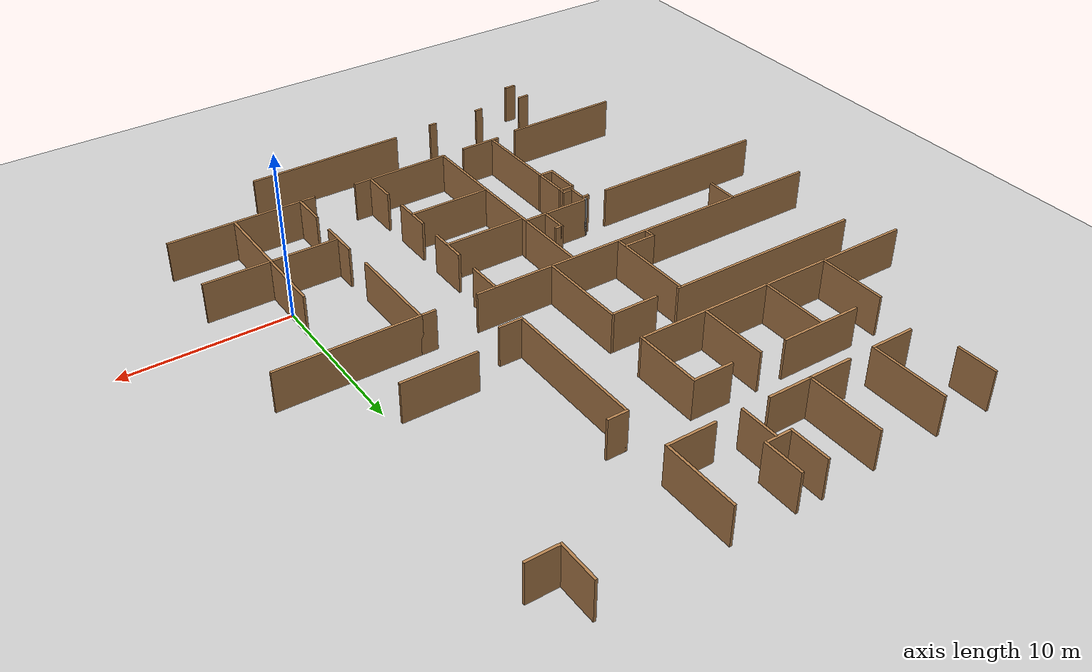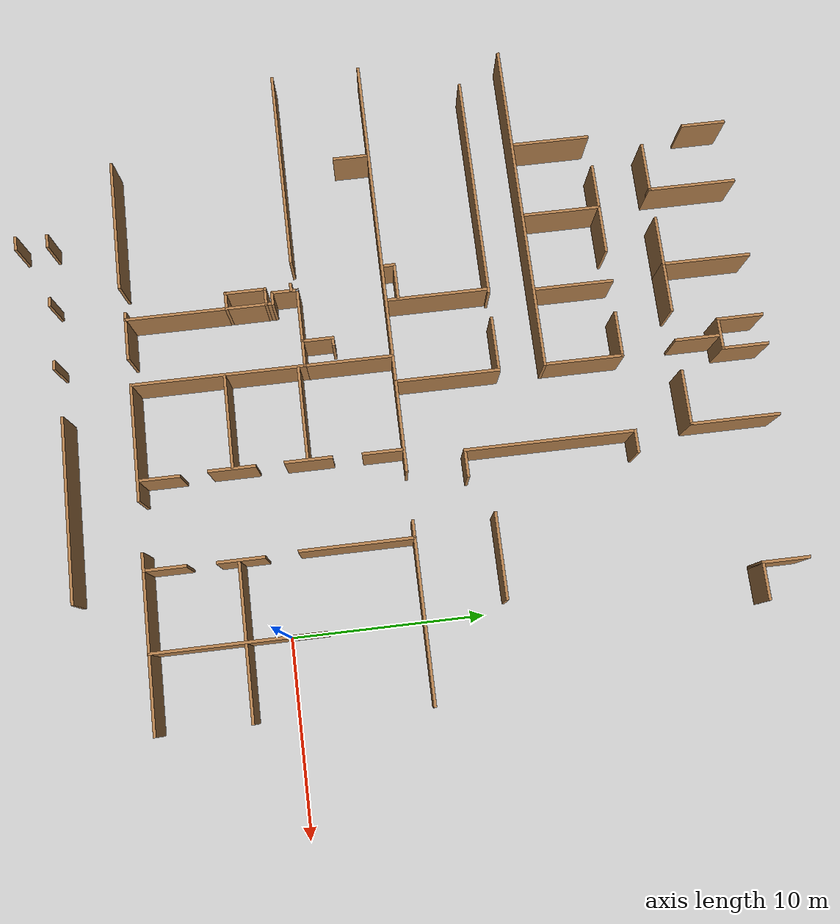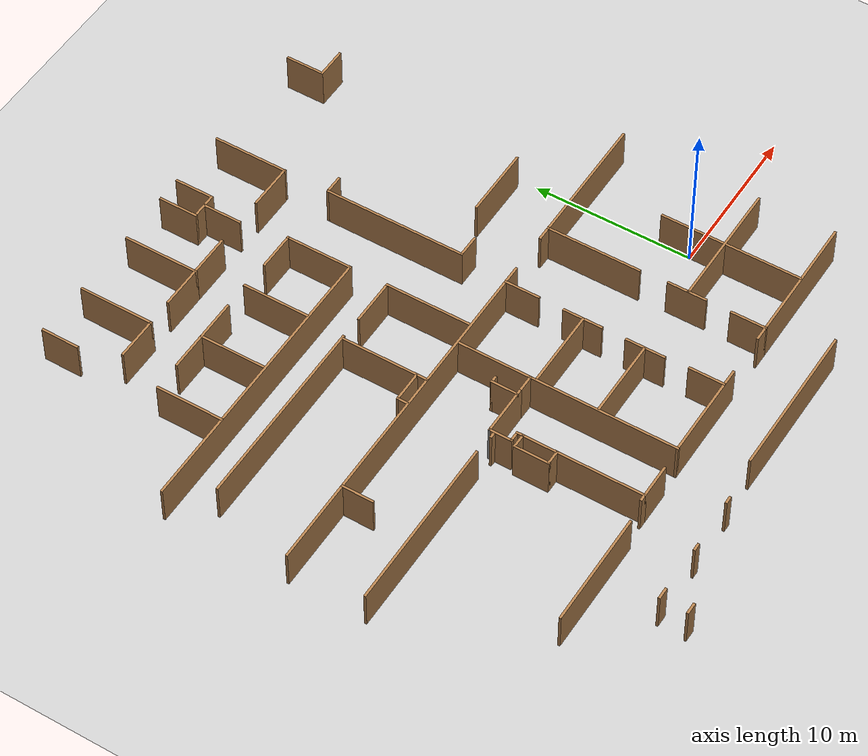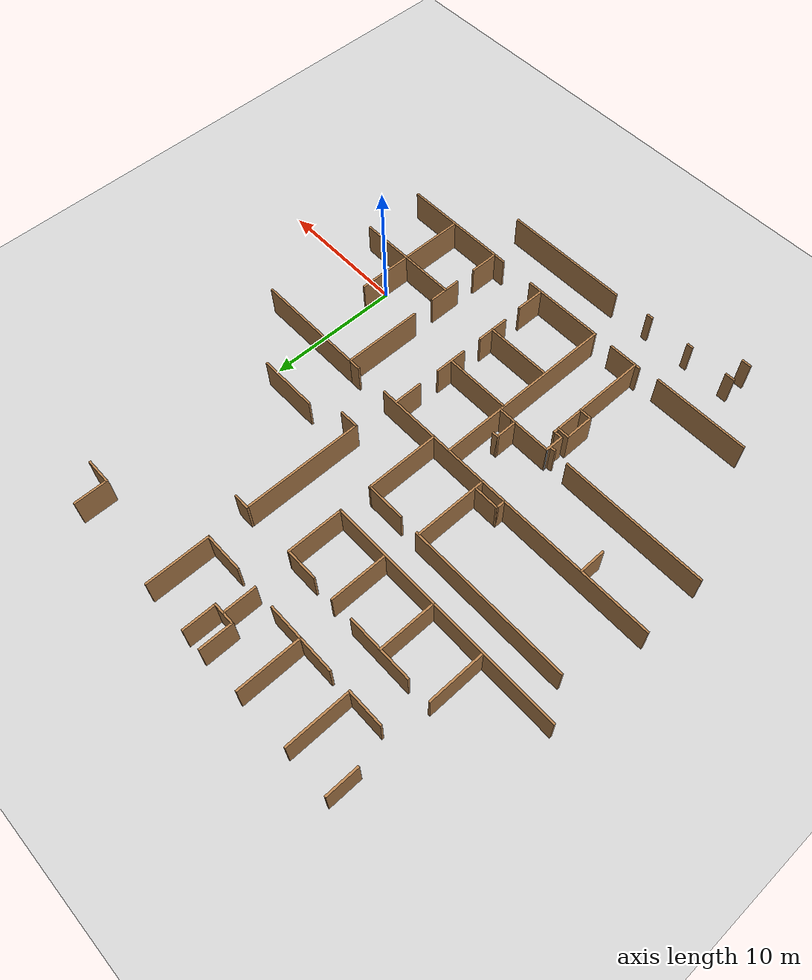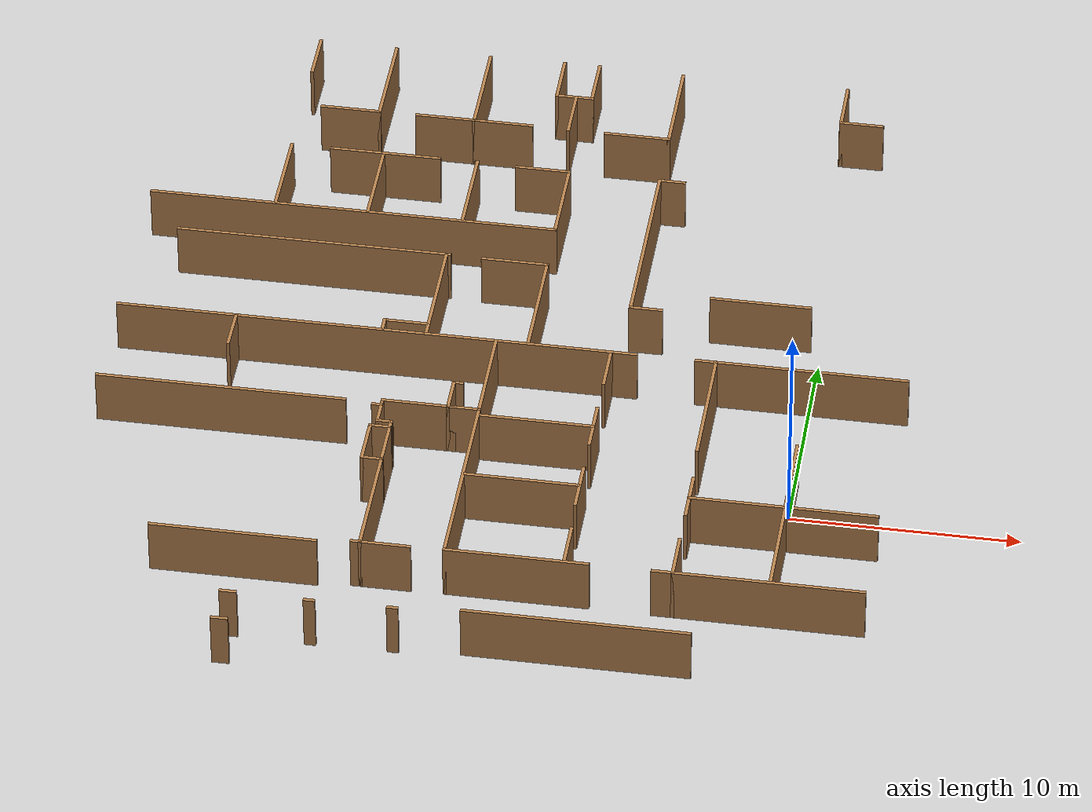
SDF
<sdf version="1.6">
 <world name="default">
  <model name="ground_plane">
   <static>1</static>
   <link name="link">
    <collision name="collision">
     <geometry><plane><normal>0 0 1</normal><size>100 100</size></plane></geometry>
     <surface><friction><ode><mu>100</mu><mu2>50</mu2></ode></friction></surface>
    </collision>
    <visual name="visual">
     <cast_shadows>0</cast_shadows>
     <geometry><plane><normal>0 0 1</normal><size>100 100</size></plane></geometry>
     <material>
      <script><uri>file://media/materials/scripts/gazebo.material</uri><name>Gazebo/Grey</name></script>
     </material>
    </visual>
   </link>
  </model>
  <model name="floor_plan">
   <link name="Wall_136">
    <collision name="Wall_136_Collision">
     <geometry><box><size>4.5 0.15 2.5</size></box></geometry>
     <pose>0 0 1.25 0 -0 0</pose>
    </collision>
    <visual name="Wall_136_Visual">
     <pose>0 0 1.25 0 -0 0</pose>
     <geometry><box><size>4.5 0.15 2.5</size></box></geometry>
     <material>
      <script><uri>file://media/materials/scripts/gazebo.material</uri><name>Gazebo/Wood</name></script>
      <ambient>1 1 1 1</ambient>
     </material>
    </visual>
    <pose>-2.72059 11.0775 0 0 -0 0</pose>
   </link>
   <link name="Wall_138">
    <collision name="Wall_138_Collision">
     <geometry><box><size>1.25 0.15 2.5</size></box></geometry>
     <pose>0 0 1.25 0 -0 0</pose>
    </collision>
    <visual name="Wall_138_Visual">
     <pose>0 0 1.25 0 -0 0</pose>
     <geometry><box><size>1.25 0.15 2.5</size></box></geometry>
     <material>
      <script><uri>file://media/materials/scripts/gazebo.material</uri><name>Gazebo/Wood</name></script>
      <ambient>1 1 1 1</ambient>
     </material>
    </visual>
    <pose>-7.75979 18.8072 0 0 -0 3.14159</pose>
   </link>
   <link name="Wall_139">
    <collision name="Wall_139_Collision">
     <geometry><box><size>9 0.15 2.5</size></box></geometry>
     <pose>0 0 1.25 0 -0 0</pose>
    </collision>
    <visual name="Wall_139_Visual">
     <pose>0 0 1.25 0 -0 0</pose>
     <geometry><box><size>9 0.15 2.5</size></box></geometry>
     <material>
      <script><uri>file://media/materials/scripts/gazebo.material</uri><name>Gazebo/Wood</name></script>
      <ambient>1 1 1 1</ambient>
     </material>
    </visual>
    <pose>-8.30979 14.3822 0 0 0 -1.5708</pose>
   </link>
   <link name="Wall_140">
    <collision name="Wall_140_Collision">
     <geometry><box><size>1.5 0.15 2.5</size></box></geometry>
     <pose>0 0 1.25 0 -0 0</pose>
    </collision>
    <visual name="Wall_140_Visual">
     <pose>0 0 1.25 0 -0 0</pose>
     <geometry><box><size>1.5 0.15 2.5</size></box></geometry>
     <material>
      <script><uri>file://media/materials/scripts/gazebo.material</uri><name>Gazebo/Wood</name></script>
      <ambient>1 1 1 1</ambient>
     </material>
    </visual>
    <pose>-7.63479 9.95716 0 0 -0 0</pose>
   </link>
   <link name="Wall_478">
    <collision name="Wall_478_Collision">
     <geometry><box><size>8.25 0.15 2.5</size></box></geometry>
     <pose>0 0 1.25 0 -0 0</pose>
    </collision>
    <visual name="Wall_478_Visual">
     <pose>0 0 1.25 0 -0 0</pose>
     <geometry><box><size>8.25 0.15 2.5</size></box></geometry>
     <material>
      <script><uri>file://media/materials/scripts/gazebo.material</uri><name>Gazebo/Wood</name></script>
      <ambient>1 1 1 1</ambient>
     </material>
    </visual>
    <pose>0.001989 -6.87235 0 0 -0 3.14159</pose>
   </link>
   <link name="Wall_479">
    <collision name="Wall_479_Collision">
     <geometry><box><size>2.25 0.15 2.5</size></box></geometry>
     <pose>0 0 1.25 0 -0 0</pose>
    </collision>
    <visual name="Wall_479_Visual">
     <pose>0 0 1.25 0 -0 0</pose>
     <geometry><box><size>2.25 0.15 2.5</size></box></geometry>
     <material>
      <script><uri>file://media/materials/scripts/gazebo.material</uri><name>Gazebo/Wood</name></script>
      <ambient>1 1 1 1</ambient>
     </material>
    </visual>
    <pose>-4.04801 -5.82235 0 0 -0 1.5708</pose>
   </link>
   <link name="Wall_487">
    <collision name="Wall_487_Collision">
     <geometry><box><size>2.5 0.15 2.5</size></box></geometry>
     <pose>0 0 1.25 0 -0 0</pose>
    </collision>
    <visual name="Wall_487_Visual">
     <pose>0 0 1.25 0 -0 0</pose>
     <geometry><box><size>2.5 0.15 2.5</size></box></geometry>
     <material>
      <script><uri>file://media/materials/scripts/gazebo.material</uri><name>Gazebo/Wood</name></script>
      <ambient>1 1 1 1</ambient>
     </material>
    </visual>
    <pose>-4.02581 -1.96902 0 0 -0 1.5708</pose>
   </link>
   <link name="Wall_489">
    <collision name="Wall_489_Collision">
     <geometry><box><size>6 0.15 2.5</size></box></geometry>
     <pose>0 0 1.25 0 -0 0</pose>
    </collision>
    <visual name="Wall_489_Visual">
     <pose>0 0 1.25 0 -0 0</pose>
     <geometry><box><size>6 0.15 2.5</size></box></geometry>
     <material>
      <script><uri>file://media/materials/scripts/gazebo.material</uri><name>Gazebo/Wood</name></script>
      <ambient>1 1 1 1</ambient>
     </material>
    </visual>
    <pose>-4.12159 3.93162 0 0 -0 1.5708</pose>
   </link>
   <link name="Wall_490">
    <collision name="Wall_490_Collision">
     <geometry><box><size>8.5 0.15 2.5</size></box></geometry>
     <pose>0 0 1.25 0 -0 0</pose>
    </collision>
    <visual name="Wall_490_Visual">
     <pose>0 0 1.25 0 -0 0</pose>
     <geometry><box><size>8.5 0.15 2.5</size></box></geometry>
     <material>
      <script><uri>file://media/materials/scripts/gazebo.material</uri><name>Gazebo/Wood</name></script>
      <ambient>1 1 1 1</ambient>
     </material>
    </visual>
    <pose>0.053406 6.85663 0 0 -0 0</pose>
   </link>
   <link name="Wall_498">
    <collision name="Wall_498_Collision">
     <geometry><box><size>8.15 0.15 2.5</size></box></geometry>
     <pose>0 0 1.25 0 -0 0</pose>
    </collision>
    <visual name="Wall_498_Visual">
     <pose>0 0 1.25 0 -0 0</pose>
     <geometry><box><size>8.15 0.15 2.5</size></box></geometry>
     <material>
      <script><uri>file://media/materials/scripts/gazebo.material</uri><name>Gazebo/Wood</name></script>
      <ambient>1 1 1 1</ambient>
     </material>
    </visual>
    <pose>0.006118 -2.05847 0 0 -0 0</pose>
   </link>
   <link name="Wall_500">
    <collision name="Wall_500_Collision">
     <geometry><box><size>8.9 0.15 2.5</size></box></geometry>
     <pose>0 0 1.25 0 -0 0</pose>
    </collision>
    <visual name="Wall_500_Visual">
     <pose>0 0 1.25 0 -0 0</pose>
     <geometry><box><size>8.9 0.15 2.5</size></box></geometry>
     <material>
      <script><uri>file://media/materials/scripts/gazebo.material</uri><name>Gazebo/Wood</name></script>
      <ambient>1 1 1 1</ambient>
     </material>
    </visual>
    <pose>0.079028 -2.46115 0 0 -0 1.5708</pose>
   </link>
   <link name="Wall_502">
    <collision name="Wall_502_Collision">
     <geometry><box><size>9.75 0.15 2.5</size></box></geometry>
     <pose>0 0 1.25 0 -0 0</pose>
    </collision>
    <visual name="Wall_502_Visual">
     <pose>0 0 1.25 0 -0 0</pose>
     <geometry><box><size>9.75 0.15 2.5</size></box></geometry>
     <material>
      <script><uri>file://media/materials/scripts/gazebo.material</uri><name>Gazebo/Wood</name></script>
      <ambient>1 1 1 1</ambient>
     </material>
    </visual>
    <pose>-7.61295 -10.5084 0 0 -0 0</pose>
   </link>
   <link name="Wall_52">
    <collision name="Wall_52_Collision">
     <geometry><box><size>2.4 0.15 2.5</size></box></geometry>
     <pose>0 0 1.25 0 -0 0</pose>
    </collision>
    <visual name="Wall_52_Visual">
     <pose>0 0 1.25 0 -0 0</pose>
     <geometry><box><size>2.4 0.15 2.5</size></box></geometry>
     <material>
      <script><uri>file://media/materials/scripts/gazebo.material</uri><name>Gazebo/Wood</name></script>
      <ambient>1 1 1 1</ambient>
     </material>
    </visual>
    <pose>-24.9619 25.3058 0 0 -0 1.5708</pose>
   </link>
   <link name="Wall_525">
    <collision name="Wall_525_Collision">
     <geometry><box><size>1 0.15 2.5</size></box></geometry>
     <pose>0 0 1.25 0 -0 0</pose>
    </collision>
    <visual name="Wall_525_Visual">
     <pose>0 0 1.25 0 -0 0</pose>
     <geometry><box><size>1 0.15 2.5</size></box></geometry>
     <material>
      <script><uri>file://media/materials/scripts/gazebo.material</uri><name>Gazebo/Wood</name></script>
      <ambient>1 1 1 1</ambient>
     </material>
    </visual>
    <pose>-4.54659 6.85663 0 0 -0 3.14159</pose>
   </link>
   <link name="Wall_527">
    <collision name="Wall_527_Collision">
     <geometry><box><size>23 0.15 2.5</size></box></geometry>
     <pose>0 0 1.25 0 -0 0</pose>
    </collision>
    <visual name="Wall_527_Visual">
     <pose>0 0 1.25 0 -0 0</pose>
     <geometry><box><size>23 0.15 2.5</size></box></geometry>
     <material>
      <script><uri>file://media/materials/scripts/gazebo.material</uri><name>Gazebo/Wood</name></script>
      <ambient>1 1 1 1</ambient>
     </material>
    </visual>
    <pose>-19.0405 6.85215 0 0 -0 3.14159</pose>
   </link>
   <link name="Wall_530">
    <collision name="Wall_530_Collision">
     <geometry><box><size>11 0.15 2.5</size></box></geometry>
     <pose>0 0 1.25 0 -0 0</pose>
    </collision>
    <visual name="Wall_530_Visual">
     <pose>0 0 1.25 0 -0 0</pose>
     <geometry><box><size>11 0.15 2.5</size></box></geometry>
     <material>
      <script><uri>file://media/materials/scripts/gazebo.material</uri><name>Gazebo/Wood</name></script>
      <ambient>1 1 1 1</ambient>
     </material>
    </visual>
    <pose>-25.0205 2.04584 0 0 -0 0</pose>
   </link>
   <link name="Wall_534">
    <collision name="Wall_534_Collision">
     <geometry><box><size>0.5 0.15 2.5</size></box></geometry>
     <pose>0 0 1.25 0 -0 0</pose>
    </collision>
    <visual name="Wall_534_Visual">
     <pose>0 0 1.25 0 -0 0</pose>
     <geometry><box><size>0.5 0.15 2.5</size></box></geometry>
     <material>
      <script><uri>file://media/materials/scripts/gazebo.material</uri><name>Gazebo/Wood</name></script>
      <ambient>1 1 1 1</ambient>
     </material>
    </visual>
    <pose>-14.935 3.83197 0 0 -0 3.14159</pose>
   </link>
   <link name="Wall_535">
    <collision name="Wall_535_Collision">
     <geometry><box><size>1.75 0.15 2.5</size></box></geometry>
     <pose>0 0 1.25 0 -0 0</pose>
    </collision>
    <visual name="Wall_535_Visual">
     <pose>0 0 1.25 0 -0 0</pose>
     <geometry><box><size>1.75 0.15 2.5</size></box></geometry>
     <material>
      <script><uri>file://media/materials/scripts/gazebo.material</uri><name>Gazebo/Wood</name></script>
      <ambient>1 1 1 1</ambient>
     </material>
    </visual>
    <pose>-15.11 3.03197 0 0 0 -1.5708</pose>
   </link>
   <link name="Wall_536">
    <collision name="Wall_536_Collision">
     <geometry><box><size>1.5 0.15 2.5</size></box></geometry>
     <pose>0 0 1.25 0 -0 0</pose>
    </collision>
    <visual name="Wall_536_Visual">
     <pose>0 0 1.25 0 -0 0</pose>
     <geometry><box><size>1.5 0.15 2.5</size></box></geometry>
     <material>
      <script><uri>file://media/materials/scripts/gazebo.material</uri><name>Gazebo/Wood</name></script>
      <ambient>1 1 1 1</ambient>
     </material>
    </visual>
    <pose>-14.4351 2.23197 0 0 -0 0</pose>
   </link>
   <link name="Wall_537">
    <collision name="Wall_537_Collision">
     <geometry><box><size>4.75 0.15 2.5</size></box></geometry>
     <pose>0 0 1.25 0 -0 0</pose>
    </collision>
    <visual name="Wall_537_Visual">
     <pose>0 0 1.25 0 -0 0</pose>
     <geometry><box><size>4.75 0.15 2.5</size></box></geometry>
     <material>
      <script><uri>file://media/materials/scripts/gazebo.material</uri><name>Gazebo/Wood</name></script>
      <ambient>1 1 1 1</ambient>
     </material>
    </visual>
    <pose>-13.76 4.53197 0 0 -0 1.5708</pose>
   </link>
   <link name="Wall_551">
    <collision name="Wall_551_Collision">
     <geometry><box><size>0.15 0.15 2.5</size></box></geometry>
     <pose>0 0 1.25 0 -0 0</pose>
    </collision>
    <visual name="Wall_551_Visual">
     <pose>0 0 1.25 0 -0 0</pose>
     <geometry><box><size>0.15 0.15 2.5</size></box></geometry>
     <material>
      <script><uri>file://media/materials/scripts/gazebo.material</uri><name>Gazebo/Grey</name></script>
      <ambient>1 1 1 1</ambient>
     </material>
    </visual>
    <pose>-17.9601 2.23197 0 0 -0 0</pose>
   </link>
   <link name="Wall_553">
    <collision name="Wall_553_Collision">
     <geometry><box><size>3.25 0.15 2.5</size></box></geometry>
     <pose>0 0 1.25 0 -0 0</pose>
    </collision>
    <visual name="Wall_553_Visual">
     <pose>0 0 1.25 0 -0 0</pose>
     <geometry><box><size>3.25 0.15 2.5</size></box></geometry>
     <material>
      <script><uri>file://media/materials/scripts/gazebo.material</uri><name>Gazebo/Wood</name></script>
      <ambient>1 1 1 1</ambient>
     </material>
    </visual>
    <pose>-16.41 2.23197 0 0 -0 0</pose>
   </link>
   <link name="Wall_555">
    <collision name="Wall_555_Collision">
     <geometry><box><size>1.5 0.15 2.5</size></box></geometry>
     <pose>0 0 1.25 0 -0 0</pose>
    </collision>
    <visual name="Wall_555_Visual">
     <pose>0 0 1.25 0 -0 0</pose>
     <geometry><box><size>1.5 0.15 2.5</size></box></geometry>
     <material>
      <script><uri>file://media/materials/scripts/gazebo.material</uri><name>Gazebo/Wood</name></script>
      <ambient>1 1 1 1</ambient>
     </material>
    </visual>
    <pose>-17.9601 1.55697 0 0 0 -1.5708</pose>
   </link>
   <link name="Wall_556">
    <collision name="Wall_556_Collision">
     <geometry><box><size>0.75 0.15 2.5</size></box></geometry>
     <pose>0 0 1.25 0 -0 0</pose>
    </collision>
    <visual name="Wall_556_Visual">
     <pose>0 0 1.25 0 -0 0</pose>
     <geometry><box><size>0.75 0.15 2.5</size></box></geometry>
     <material>
      <script><uri>file://media/materials/scripts/gazebo.material</uri><name>Gazebo/Wood</name></script>
      <ambient>1 1 1 1</ambient>
     </material>
    </visual>
    <pose>-17.66 0.881971 0 0 -0 0</pose>
   </link>
   <link name="Wall_557">
    <collision name="Wall_557_Collision">
     <geometry><box><size>0.5 0.15 2.5</size></box></geometry>
     <pose>0 0 1.25 0 -0 0</pose>
    </collision>
    <visual name="Wall_557_Visual">
     <pose>0 0 1.25 0 -0 0</pose>
     <geometry><box><size>0.5 0.15 2.5</size></box></geometry>
     <material>
      <script><uri>file://media/materials/scripts/gazebo.material</uri><name>Gazebo/Wood</name></script>
      <ambient>1 1 1 1</ambient>
     </material>
    </visual>
    <pose>-17.3601 0.706971 0 0 0 -1.5708</pose>
   </link>
   <link name="Wall_558">
    <collision name="Wall_558_Collision">
     <geometry><box><size>1 0.15 2.5</size></box></geometry>
     <pose>0 0 1.25 0 -0 0</pose>
    </collision>
    <visual name="Wall_558_Visual">
     <pose>0 0 1.25 0 -0 0</pose>
     <geometry><box><size>1 0.15 2.5</size></box></geometry>
     <material>
      <script><uri>file://media/materials/scripts/gazebo.material</uri><name>Gazebo/Wood</name></script>
      <ambient>1 1 1 1</ambient>
     </material>
    </visual>
    <pose>-17.785 0.531971 0 0 -0 3.14159</pose>
   </link>
   <link name="Wall_559">
    <collision name="Wall_559_Collision">
     <geometry><box><size>2.25 0.15 2.5</size></box></geometry>
     <pose>0 0 1.25 0 -0 0</pose>
    </collision>
    <visual name="Wall_559_Visual">
     <pose>0 0 1.25 0 -0 0</pose>
     <geometry><box><size>2.25 0.15 2.5</size></box></geometry>
     <material>
      <script><uri>file://media/materials/scripts/gazebo.material</uri><name>Gazebo/Wood</name></script>
      <ambient>1 1 1 1</ambient>
     </material>
    </visual>
    <pose>-18.2101 -0.518029 0 0 0 -1.5708</pose>
   </link>
   <link name="Wall_56">
    <collision name="Wall_56_Collision">
     <geometry><box><size>2.75 0.15 2.5</size></box></geometry>
     <pose>0 0 1.25 0 -0 0</pose>
    </collision>
    <visual name="Wall_56_Visual">
     <pose>0 0 1.25 0 -0 0</pose>
     <geometry><box><size>2.75 0.15 2.5</size></box></geometry>
     <material>
      <script><uri>file://media/materials/scripts/gazebo.material</uri><name>Gazebo/Wood</name></script>
      <ambient>1 1 1 1</ambient>
     </material>
    </visual>
    <pose>-22.7586 21.7614 0 0 -0 0</pose>
   </link>
   <link name="Wall_562">
    <collision name="Wall_562_Collision">
     <geometry><box><size>0.5 0.15 2.5</size></box></geometry>
     <pose>0 0 1.25 0 -0 0</pose>
    </collision>
    <visual name="Wall_562_Visual">
     <pose>0 0 1.25 0 -0 0</pose>
     <geometry><box><size>0.5 0.15 2.5</size></box></geometry>
     <material>
      <script><uri>file://media/materials/scripts/gazebo.material</uri><name>Gazebo/Wood</name></script>
      <ambient>1 1 1 1</ambient>
     </material>
    </visual>
    <pose>-18.1435 1.91203 0 0 -0 3.14159</pose>
   </link>
   <link name="Wall_564">
    <collision name="Wall_564_Collision">
     <geometry><box><size>9.25 0.15 2.5</size></box></geometry>
     <pose>0 0 1.25 0 -0 0</pose>
    </collision>
    <visual name="Wall_564_Visual">
     <pose>0 0 1.25 0 -0 0</pose>
     <geometry><box><size>9.25 0.15 2.5</size></box></geometry>
     <material>
      <script><uri>file://media/materials/scripts/gazebo.material</uri><name>Gazebo/Wood</name></script>
      <ambient>1 1 1 1</ambient>
     </material>
    </visual>
    <pose>-13.76 -2.31803 0 0 0 -1.5708</pose>
   </link>
   <link name="Wall_565">
    <collision name="Wall_565_Collision">
     <geometry><box><size>6.25 0.15 2.5</size></box></geometry>
     <pose>0 0 1.25 0 -0 0</pose>
    </collision>
    <visual name="Wall_565_Visual">
     <pose>0 0 1.25 0 -0 0</pose>
     <geometry><box><size>6.25 0.15 2.5</size></box></geometry>
     <material>
      <script><uri>file://media/materials/scripts/gazebo.material</uri><name>Gazebo/Wood</name></script>
      <ambient>1 1 1 1</ambient>
     </material>
    </visual>
    <pose>-10.7101 -6.86803 0 0 -0 0</pose>
   </link>
   <link name="Wall_567">
    <collision name="Wall_567_Collision">
     <geometry><box><size>1 0.15 2.5</size></box></geometry>
     <pose>0 0 1.25 0 -0 0</pose>
    </collision>
    <visual name="Wall_567_Visual">
     <pose>0 0 1.25 0 -0 0</pose>
     <geometry><box><size>1 0.15 2.5</size></box></geometry>
     <material>
      <script><uri>file://media/materials/scripts/gazebo.material</uri><name>Gazebo/Wood</name></script>
      <ambient>1 1 1 1</ambient>
     </material>
    </visual>
    <pose>-4.47301 -6.87235 0 0 -0 3.14159</pose>
   </link>
   <link name="Wall_57">
    <collision name="Wall_57_Collision">
     <geometry><box><size>4.75 0.15 2.5</size></box></geometry>
     <pose>0 0 1.25 0 -0 0</pose>
    </collision>
    <visual name="Wall_57_Visual">
     <pose>0 0 1.25 0 -0 0</pose>
     <geometry><box><size>4.75 0.15 2.5</size></box></geometry>
     <material>
      <script><uri>file://media/materials/scripts/gazebo.material</uri><name>Gazebo/Wood</name></script>
      <ambient>1 1 1 1</ambient>
     </material>
    </visual>
    <pose>-21.4586 24.0614 0 0 -0 1.5708</pose>
   </link>
   <link name="Wall_570">
    <collision name="Wall_570_Collision">
     <geometry><box><size>2.25 0.15 2.5</size></box></geometry>
     <pose>0 0 1.25 0 -0 0</pose>
    </collision>
    <visual name="Wall_570_Visual">
     <pose>0 0 1.25 0 -0 0</pose>
     <geometry><box><size>2.25 0.15 2.5</size></box></geometry>
     <material>
      <script><uri>file://media/materials/scripts/gazebo.material</uri><name>Gazebo/Wood</name></script>
      <ambient>1 1 1 1</ambient>
     </material>
    </visual>
    <pose>-8.718 5.79857 0 0 0 -1.5708</pose>
   </link>
   <link name="Wall_572">
    <collision name="Wall_572_Collision">
     <geometry><box><size>2.5 0.15 2.5</size></box></geometry>
     <pose>0 0 1.25 0 -0 0</pose>
    </collision>
    <visual name="Wall_572_Visual">
     <pose>0 0 1.25 0 -0 0</pose>
     <geometry><box><size>2.5 0.15 2.5</size></box></geometry>
     <material>
      <script><uri>file://media/materials/scripts/gazebo.material</uri><name>Gazebo/Wood</name></script>
      <ambient>1 1 1 1</ambient>
     </material>
    </visual>
    <pose>-8.74202 1.91202 0 0 0 -1.5708</pose>
   </link>
   <link name="Wall_574">
    <collision name="Wall_574_Collision">
     <geometry><box><size>2.5 0.15 2.5</size></box></geometry>
     <pose>0 0 1.25 0 -0 0</pose>
    </collision>
    <visual name="Wall_574_Visual">
     <pose>0 0 1.25 0 -0 0</pose>
     <geometry><box><size>2.5 0.15 2.5</size></box></geometry>
     <material>
      <script><uri>file://media/materials/scripts/gazebo.material</uri><name>Gazebo/Wood</name></script>
      <ambient>1 1 1 1</ambient>
     </material>
    </visual>
    <pose>-8.74318 -2.02448 0 0 0 -1.5708</pose>
   </link>
   <link name="Wall_579">
    <collision name="Wall_579_Collision">
     <geometry><box><size>2.25 0.15 2.5</size></box></geometry>
     <pose>0 0 1.25 0 -0 0</pose>
    </collision>
    <visual name="Wall_579_Visual">
     <pose>0 0 1.25 0 -0 0</pose>
     <geometry><box><size>2.25 0.15 2.5</size></box></geometry>
     <material>
      <script><uri>file://media/materials/scripts/gazebo.material</uri><name>Gazebo/Wood</name></script>
      <ambient>1 1 1 1</ambient>
     </material>
    </visual>
    <pose>-8.66602 -5.78721 0 0 -0 1.5708</pose>
   </link>
   <link name="Wall_581">
    <collision name="Wall_581_Collision">
     <geometry><box><size>5 0.15 2.5</size></box></geometry>
     <pose>0 0 1.25 0 -0 0</pose>
    </collision>
    <visual name="Wall_581_Visual">
     <pose>0 0 1.25 0 -0 0</pose>
     <geometry><box><size>5 0.15 2.5</size></box></geometry>
     <material>
      <script><uri>file://media/materials/scripts/gazebo.material</uri><name>Gazebo/Wood</name></script>
      <ambient>1 1 1 1</ambient>
     </material>
    </visual>
    <pose>-11.2426 -1.9871 0 0 -0 3.14159</pose>
   </link>
   <link name="Wall_583">
    <collision name="Wall_583_Collision">
     <geometry><box><size>5.05 0.15 2.5</size></box></geometry>
     <pose>0 0 1.25 0 -0 0</pose>
    </collision>
    <visual name="Wall_583_Visual">
     <pose>0 0 1.25 0 -0 0</pose>
     <geometry><box><size>5.05 0.15 2.5</size></box></geometry>
     <material>
      <script><uri>file://media/materials/scripts/gazebo.material</uri><name>Gazebo/Wood</name></script>
      <ambient>1 1 1 1</ambient>
     </material>
    </visual>
    <pose>-11.2171 1.87783 0 0 -0 3.14159</pose>
   </link>
   <link name="Wall_588">
    <collision name="Wall_588_Collision">
     <geometry><box><size>2 0.15 2.5</size></box></geometry>
     <pose>0 0 1.25 0 -0 0</pose>
    </collision>
    <visual name="Wall_588_Visual">
     <pose>0 0 1.25 0 -0 0</pose>
     <geometry><box><size>2 0.15 2.5</size></box></geometry>
     <material>
      <script><uri>file://media/materials/scripts/gazebo.material</uri><name>Gazebo/Wood</name></script>
      <ambient>1 1 1 1</ambient>
     </material>
    </visual>
    <pose>-25.2339 5.89344 0 0 0 -1.5708</pose>
   </link>
   <link name="Wall_59">
    <collision name="Wall_59_Collision">
     <geometry><box><size>2.75 0.15 2.5</size></box></geometry>
     <pose>0 0 1.25 0 -0 0</pose>
    </collision>
    <visual name="Wall_59_Visual">
     <pose>0 0 1.25 0 -0 0</pose>
     <geometry><box><size>2.75 0.15 2.5</size></box></geometry>
     <material>
      <script><uri>file://media/materials/scripts/gazebo.material</uri><name>Gazebo/Wood</name></script>
      <ambient>1 1 1 1</ambient>
     </material>
    </visual>
    <pose>-18.4507 21.7893 0 0 -0 0</pose>
   </link>
   <link name="Wall_593">
    <collision name="Wall_593_Collision">
     <geometry><box><size>7.25 0.15 2.5</size></box></geometry>
     <pose>0 0 1.25 0 -0 0</pose>
    </collision>
    <visual name="Wall_593_Visual">
     <pose>0 0 1.25 0 -0 0</pose>
     <geometry><box><size>7.25 0.15 2.5</size></box></geometry>
     <material>
      <script><uri>file://media/materials/scripts/gazebo.material</uri><name>Gazebo/Wood</name></script>
      <ambient>1 1 1 1</ambient>
     </material>
    </visual>
    <pose>-22.7839 -7.13156 0 0 -0 0</pose>
   </link>
   <link name="Wall_596">
    <collision name="Wall_596_Collision">
     <geometry><box><size>2.25 0.15 2.5</size></box></geometry>
     <pose>0 0 1.25 0 -0 0</pose>
    </collision>
    <visual name="Wall_596_Visual">
     <pose>0 0 1.25 0 -0 0</pose>
     <geometry><box><size>2.25 0.15 2.5</size></box></geometry>
     <material>
      <script><uri>file://media/materials/scripts/gazebo.material</uri><name>Gazebo/Wood</name></script>
      <ambient>1 1 1 1</ambient>
     </material>
    </visual>
    <pose>-17.3601 -0.518029 0 0 0 -1.5708</pose>
   </link>
   <link name="Wall_598">
    <collision name="Wall_598_Collision">
     <geometry><box><size>1 0.15 2.5</size></box></geometry>
     <pose>0 0 1.25 0 -0 0</pose>
    </collision>
    <visual name="Wall_598_Visual">
     <pose>0 0 1.25 0 -0 0</pose>
     <geometry><box><size>1 0.15 2.5</size></box></geometry>
     <material>
      <script><uri>file://media/materials/scripts/gazebo.material</uri><name>Gazebo/Wood</name></script>
      <ambient>1 1 1 1</ambient>
     </material>
    </visual>
    <pose>-17.785 -1.56803 0 0 -0 3.14159</pose>
   </link>
   <link name="Wall_60">
    <collision name="Wall_60_Collision">
     <geometry><box><size>4.75 0.15 2.5</size></box></geometry>
     <pose>0 0 1.25 0 -0 0</pose>
    </collision>
    <visual name="Wall_60_Visual">
     <pose>0 0 1.25 0 -0 0</pose>
     <geometry><box><size>4.75 0.15 2.5</size></box></geometry>
     <material>
      <script><uri>file://media/materials/scripts/gazebo.material</uri><name>Gazebo/Wood</name></script>
      <ambient>1 1 1 1</ambient>
     </material>
    </visual>
    <pose>-17.1507 24.0893 0 0 -0 1.5708</pose>
   </link>
   <link name="Wall_600">
    <collision name="Wall_600_Collision">
     <geometry><box><size>5.5 0.15 2.5</size></box></geometry>
     <pose>0 0 1.25 0 -0 0</pose>
    </collision>
    <visual name="Wall_600_Visual">
     <pose>0 0 1.25 0 -0 0</pose>
     <geometry><box><size>5.5 0.15 2.5</size></box></geometry>
     <material>
      <script><uri>file://media/materials/scripts/gazebo.material</uri><name>Gazebo/Wood</name></script>
      <ambient>1 1 1 1</ambient>
     </material>
    </visual>
    <pose>-17.3601 -4.24303 0 0 0 -1.5708</pose>
   </link>
   <link name="Wall_601">
    <collision name="Wall_601_Collision">
     <geometry><box><size>2.25 0.15 2.5</size></box></geometry>
     <pose>0 0 1.25 0 -0 0</pose>
    </collision>
    <visual name="Wall_601_Visual">
     <pose>0 0 1.25 0 -0 0</pose>
     <geometry><box><size>2.25 0.15 2.5</size></box></geometry>
     <material>
      <script><uri>file://media/materials/scripts/gazebo.material</uri><name>Gazebo/Wood</name></script>
      <ambient>1 1 1 1</ambient>
     </material>
    </visual>
    <pose>-16.31 -6.91803 0 0 -0 0</pose>
   </link>
   <link name="Wall_603">
    <collision name="Wall_603_Collision">
     <geometry><box><size>0.5 0.15 2.5</size></box></geometry>
     <pose>0 0 1.25 0 -0 0</pose>
    </collision>
    <visual name="Wall_603_Visual">
     <pose>0 0 1.25 0 -0 0</pose>
     <geometry><box><size>0.5 0.15 2.5</size></box></geometry>
     <material>
      <script><uri>file://media/materials/scripts/gazebo.material</uri><name>Gazebo/Wood</name></script>
      <ambient>1 1 1 1</ambient>
     </material>
    </visual>
    <pose>-17.535 -6.91803 0 0 -0 3.14159</pose>
   </link>
   <link name="Wall_610">
    <collision name="Wall_610_Collision">
     <geometry><box><size>12.25 0.15 2.5</size></box></geometry>
     <pose>0 0 1.25 0 -0 0</pose>
    </collision>
    <visual name="Wall_610_Visual">
     <pose>0 0 1.25 0 -0 0</pose>
     <geometry><box><size>12.25 0.15 2.5</size></box></geometry>
     <material>
      <script><uri>file://media/materials/scripts/gazebo.material</uri><name>Gazebo/Wood</name></script>
      <ambient>1 1 1 1</ambient>
     </material>
    </visual>
    <pose>-22.7656 12.3211 0 0 -0 0</pose>
   </link>
   <link name="Wall_612">
    <collision name="Wall_612_Collision">
     <geometry><box><size>5.5 0.15 2.5</size></box></geometry>
     <pose>0 0 1.25 0 -0 0</pose>
    </collision>
    <visual name="Wall_612_Visual">
     <pose>0 0 1.25 0 -0 0</pose>
     <geometry><box><size>5.5 0.15 2.5</size></box></geometry>
     <material>
      <script><uri>file://media/materials/scripts/gazebo.material</uri><name>Gazebo/Wood</name></script>
      <ambient>1 1 1 1</ambient>
     </material>
    </visual>
    <pose>-16.8474 9.55881 0 0 -0 1.5708</pose>
   </link>
   <link name="Wall_615">
    <collision name="Wall_615_Collision">
     <geometry><box><size>0.75 0.15 2.5</size></box></geometry>
     <pose>0 0 1.25 0 -0 0</pose>
    </collision>
    <visual name="Wall_615_Visual">
     <pose>0 0 1.25 0 -0 0</pose>
     <geometry><box><size>0.75 0.15 2.5</size></box></geometry>
     <material>
      <script><uri>file://media/materials/scripts/gazebo.material</uri><name>Gazebo/Wood</name></script>
      <ambient>1 1 1 1</ambient>
     </material>
    </visual>
    <pose>-18.7747 7.21079 0 0 -0 1.5708</pose>
   </link>
   <link name="Wall_616">
    <collision name="Wall_616_Collision">
     <geometry><box><size>2 0.15 2.5</size></box></geometry>
     <pose>0 0 1.25 0 -0 0</pose>
    </collision>
    <visual name="Wall_616_Visual">
     <pose>0 0 1.25 0 -0 0</pose>
     <geometry><box><size>2 0.15 2.5</size></box></geometry>
     <material>
      <script><uri>file://media/materials/scripts/gazebo.material</uri><name>Gazebo/Wood</name></script>
      <ambient>1 1 1 1</ambient>
     </material>
    </visual>
    <pose>-17.8497 7.51079 0 0 -0 0</pose>
   </link>
   <link name="Wall_618">
    <collision name="Wall_618_Collision">
     <geometry><box><size>3 0.15 2.5</size></box></geometry>
     <pose>0 0 1.25 0 -0 0</pose>
    </collision>
    <visual name="Wall_618_Visual">
     <pose>0 0 1.25 0 -0 0</pose>
     <geometry><box><size>3 0.15 2.5</size></box></geometry>
     <material>
      <script><uri>file://media/materials/scripts/gazebo.material</uri><name>Gazebo/Wood</name></script>
      <ambient>1 1 1 1</ambient>
     </material>
    </visual>
    <pose>-13.7838 12.2728 0 0 -0 0</pose>
   </link>
   <link name="Wall_619">
    <collision name="Wall_619_Collision">
     <geometry><box><size>5.5 0.15 2.5</size></box></geometry>
     <pose>0 0 1.25 0 -0 0</pose>
    </collision>
    <visual name="Wall_619_Visual">
     <pose>0 0 1.25 0 -0 0</pose>
     <geometry><box><size>5.5 0.15 2.5</size></box></geometry>
     <material>
      <script><uri>file://media/materials/scripts/gazebo.material</uri><name>Gazebo/Wood</name></script>
      <ambient>1 1 1 1</ambient>
     </material>
    </visual>
    <pose>-12.3588 9.59782 0 0 0 -1.5708</pose>
   </link>
   <link name="Wall_62">
    <collision name="Wall_62_Collision">
     <geometry><box><size>2.75 0.15 2.5</size></box></geometry>
     <pose>0 0 1.25 0 -0 0</pose>
    </collision>
    <visual name="Wall_62_Visual">
     <pose>0 0 1.25 0 -0 0</pose>
     <geometry><box><size>2.75 0.15 2.5</size></box></geometry>
     <material>
      <script><uri>file://media/materials/scripts/gazebo.material</uri><name>Gazebo/Wood</name></script>
      <ambient>1 1 1 1</ambient>
     </material>
    </visual>
    <pose>-15.8507 21.7893 0 0 -0 0</pose>
   </link>
   <link name="Wall_627">
    <collision name="Wall_627_Collision">
     <geometry><box><size>5 0.15 2.5</size></box></geometry>
     <pose>0 0 1.25 0 -0 0</pose>
    </collision>
    <visual name="Wall_627_Visual">
     <pose>0 0 1.25 0 -0 0</pose>
     <geometry><box><size>5 0.15 2.5</size></box></geometry>
     <material>
      <script><uri>file://media/materials/scripts/gazebo.material</uri><name>Gazebo/Wood</name></script>
      <ambient>1 1 1 1</ambient>
     </material>
    </visual>
    <pose>-20.6891 18.8708 0 0 -0 0</pose>
   </link>
   <link name="Wall_629">
    <collision name="Wall_629_Collision">
     <geometry><box><size>2.5 0.15 2.5</size></box></geometry>
     <pose>0 0 1.25 0 -0 0</pose>
    </collision>
    <visual name="Wall_629_Visual">
     <pose>0 0 1.25 0 -0 0</pose>
     <geometry><box><size>2.5 0.15 2.5</size></box></geometry>
     <material>
      <script><uri>file://media/materials/scripts/gazebo.material</uri><name>Gazebo/Wood</name></script>
      <ambient>1 1 1 1</ambient>
     </material>
    </visual>
    <pose>-13.5553 18.8009 0 0 -0 0</pose>
   </link>
   <link name="Wall_630">
    <collision name="Wall_630_Collision">
     <geometry><box><size>4.25 0.15 2.5</size></box></geometry>
     <pose>0 0 1.25 0 -0 0</pose>
    </collision>
    <visual name="Wall_630_Visual">
     <pose>0 0 1.25 0 -0 0</pose>
     <geometry><box><size>4.25 0.15 2.5</size></box></geometry>
     <material>
      <script><uri>file://media/materials/scripts/gazebo.material</uri><name>Gazebo/Wood</name></script>
      <ambient>1 1 1 1</ambient>
     </material>
    </visual>
    <pose>-12.3803 16.7509 0 0 0 -1.5708</pose>
   </link>
   <link name="Wall_631">
    <collision name="Wall_631_Collision">
     <geometry><box><size>18.25 0.15 2.5</size></box></geometry>
     <pose>0 0 1.25 0 -0 0</pose>
    </collision>
    <visual name="Wall_631_Visual">
     <pose>0 0 1.25 0 -0 0</pose>
     <geometry><box><size>18.25 0.15 2.5</size></box></geometry>
     <material>
      <script><uri>file://media/materials/scripts/gazebo.material</uri><name>Gazebo/Wood</name></script>
      <ambient>1 1 1 1</ambient>
     </material>
    </visual>
    <pose>-21.4303 14.7009 0 0 -0 3.14159</pose>
   </link>
   <link name="Wall_638">
    <collision name="Wall_638_Collision">
     <geometry><box><size>4.25 0.15 2.5</size></box></geometry>
     <pose>0 0 1.25 0 -0 0</pose>
    </collision>
    <visual name="Wall_638_Visual">
     <pose>0 0 1.25 0 -0 0</pose>
     <geometry><box><size>4.25 0.15 2.5</size></box></geometry>
     <material>
      <script><uri>file://media/materials/scripts/gazebo.material</uri><name>Gazebo/Wood</name></script>
      <ambient>1 1 1 1</ambient>
     </material>
    </visual>
    <pose>-24.9306 16.7987 0 0 -0 1.5708</pose>
   </link>
   <link name="Wall_64">
    <collision name="Wall_64_Collision">
     <geometry><box><size>2.5 0.15 2.5</size></box></geometry>
     <pose>0 0 1.25 0 -0 0</pose>
    </collision>
    <visual name="Wall_64_Visual">
     <pose>0 0 1.25 0 -0 0</pose>
     <geometry><box><size>2.5 0.15 2.5</size></box></geometry>
     <material>
      <script><uri>file://media/materials/scripts/gazebo.material</uri><name>Gazebo/Wood</name></script>
      <ambient>1 1 1 1</ambient>
     </material>
    </visual>
    <pose>-13.7543 25.2869 0 0 0 -1.5708</pose>
   </link>
   <link name="Wall_641">
    <collision name="Wall_641_Collision">
     <geometry><box><size>4.25 0.15 2.5</size></box></geometry>
     <pose>0 0 1.25 0 -0 0</pose>
    </collision>
    <visual name="Wall_641_Visual">
     <pose>0 0 1.25 0 -0 0</pose>
     <geometry><box><size>4.25 0.15 2.5</size></box></geometry>
     <material>
      <script><uri>file://media/materials/scripts/gazebo.material</uri><name>Gazebo/Wood</name></script>
      <ambient>1 1 1 1</ambient>
     </material>
    </visual>
    <pose>-20.7733 16.8086 0 0 -0 1.5708</pose>
   </link>
   <link name="Wall_643">
    <collision name="Wall_643_Collision">
     <geometry><box><size>4.25 0.15 2.5</size></box></geometry>
     <pose>0 0 1.25 0 -0 0</pose>
    </collision>
    <visual name="Wall_643_Visual">
     <pose>0 0 1.25 0 -0 0</pose>
     <geometry><box><size>4.25 0.15 2.5</size></box></geometry>
     <material>
      <script><uri>file://media/materials/scripts/gazebo.material</uri><name>Gazebo/Wood</name></script>
      <ambient>1 1 1 1</ambient>
     </material>
    </visual>
    <pose>-16.5325 16.8497 0 0 0 -1.5708</pose>
   </link>
   <link name="Wall_65">
    <collision name="Wall_65_Collision">
     <geometry><box><size>1.75 0.15 2.5</size></box></geometry>
     <pose>0 0 1.25 0 -0 0</pose>
    </collision>
    <visual name="Wall_65_Visual">
     <pose>0 0 1.25 0 -0 0</pose>
     <geometry><box><size>1.75 0.15 2.5</size></box></geometry>
     <material>
      <script><uri>file://media/materials/scripts/gazebo.material</uri><name>Gazebo/Wood</name></script>
      <ambient>1 1 1 1</ambient>
     </material>
    </visual>
    <pose>-12.9543 24.1119 0 0 -0 0</pose>
   </link>
   <link name="Wall_66">
    <collision name="Wall_66_Collision">
     <geometry><box><size>2.5 0.15 2.5</size></box></geometry>
     <pose>0 0 1.25 0 -0 0</pose>
    </collision>
    <visual name="Wall_66_Visual">
     <pose>0 0 1.25 0 -0 0</pose>
     <geometry><box><size>2.5 0.15 2.5</size></box></geometry>
     <material>
      <script><uri>file://media/materials/scripts/gazebo.material</uri><name>Gazebo/Wood</name></script>
      <ambient>1 1 1 1</ambient>
     </material>
    </visual>
    <pose>-12.1543 25.2869 0 0 -0 1.5708</pose>
   </link>
   <link name="Wall_68">
    <collision name="Wall_68_Collision">
     <geometry><box><size>2.5 0.15 2.5</size></box></geometry>
     <pose>0 0 1.25 0 -0 0</pose>
    </collision>
    <visual name="Wall_68_Visual">
     <pose>0 0 1.25 0 -0 0</pose>
     <geometry><box><size>2.5 0.15 2.5</size></box></geometry>
     <material>
      <script><uri>file://media/materials/scripts/gazebo.material</uri><name>Gazebo/Wood</name></script>
      <ambient>1 1 1 1</ambient>
     </material>
    </visual>
    <pose>-12.8722 22.9284 0 0 0 -1.5708</pose>
   </link>
   <link name="Wall_70">
    <collision name="Wall_70_Collision">
     <geometry><box><size>3 0.15 2.5</size></box></geometry>
     <pose>0 0 1.25 0 -0 0</pose>
    </collision>
    <visual name="Wall_70_Visual">
     <pose>0 0 1.25 0 -0 0</pose>
     <geometry><box><size>3 0.15 2.5</size></box></geometry>
     <material>
      <script><uri>file://media/materials/scripts/gazebo.material</uri><name>Gazebo/Wood</name></script>
      <ambient>1 1 1 1</ambient>
     </material>
    </visual>
    <pose>-9.74617 21.7481 0 0 -0 0</pose>
   </link>
   <link name="Wall_71">
    <collision name="Wall_71_Collision">
     <geometry><box><size>4.75 0.15 2.5</size></box></geometry>
     <pose>0 0 1.25 0 -0 0</pose>
    </collision>
    <visual name="Wall_71_Visual">
     <pose>0 0 1.25 0 -0 0</pose>
     <geometry><box><size>4.75 0.15 2.5</size></box></geometry>
     <material>
      <script><uri>file://media/materials/scripts/gazebo.material</uri><name>Gazebo/Wood</name></script>
      <ambient>1 1 1 1</ambient>
     </material>
    </visual>
    <pose>-8.32117 24.0481 0 0 -0 1.5708</pose>
   </link>
   <link name="Wall_73">
    <collision name="Wall_73_Collision">
     <geometry><box><size>2.5 0.15 2.5</size></box></geometry>
     <pose>0 0 1.25 0 -0 0</pose>
    </collision>
    <visual name="Wall_73_Visual">
     <pose>0 0 1.25 0 -0 0</pose>
     <geometry><box><size>2.5 0.15 2.5</size></box></geometry>
     <material>
      <script><uri>file://media/materials/scripts/gazebo.material</uri><name>Gazebo/Wood</name></script>
      <ambient>1 1 1 1</ambient>
     </material>
    </visual>
    <pose>-0.840384 25.267 0 0 0 -1.5708</pose>
   </link>
   <link name="Wall_74">
    <collision name="Wall_74_Collision">
     <geometry><box><size>2 0.15 2.5</size></box></geometry>
     <pose>0 0 1.25 0 -0 0</pose>
    </collision>
    <visual name="Wall_74_Visual">
     <pose>0 0 1.25 0 -0 0</pose>
     <geometry><box><size>2 0.15 2.5</size></box></geometry>
     <material>
      <script><uri>file://media/materials/scripts/gazebo.material</uri><name>Gazebo/Wood</name></script>
      <ambient>1 1 1 1</ambient>
     </material>
    </visual>
    <pose>0.084616 24.092 0 0 -0 0</pose>
   </link>
   <link name="Wall_759">
    <collision name="Wall_759_Collision">
     <geometry><box><size>0.5 0.15 2.5</size></box></geometry>
     <pose>0 0 1.25 0 -0 0</pose>
    </collision>
    <visual name="Wall_759_Visual">
     <pose>0 0 1.25 0 -0 0</pose>
     <geometry><box><size>0.5 0.15 2.5</size></box></geometry>
     <material>
      <script><uri>file://media/materials/scripts/gazebo.material</uri><name>Gazebo/Wood</name></script>
      <ambient>1 1 1 1</ambient>
     </material>
    </visual>
    <pose>-18.8317 -10.8456 0 0 -0 0</pose>
   </link>
   <link name="Wall_763">
    <collision name="Wall_763_Collision">
     <geometry><box><size>0.5 0.15 2.5</size></box></geometry>
     <pose>0 0 1.25 0 -0 0</pose>
    </collision>
    <visual name="Wall_763_Visual">
     <pose>0 0 1.25 0 -0 0</pose>
     <geometry><box><size>0.5 0.15 2.5</size></box></geometry>
     <material>
      <script><uri>file://media/materials/scripts/gazebo.material</uri><name>Gazebo/Wood</name></script>
      <ambient>1 1 1 1</ambient>
     </material>
    </visual>
    <pose>-15.3136 -10.7787 0 0 -0 0</pose>
   </link>
   <link name="Wall_791">
    <collision name="Wall_791_Collision">
     <geometry><box><size>0.75 0.15 2.5</size></box></geometry>
     <pose>0 0 1.25 0 -0 0</pose>
    </collision>
    <visual name="Wall_791_Visual">
     <pose>0 0 1.25 0 -0 0</pose>
     <geometry><box><size>0.75 0.15 2.5</size></box></geometry>
     <material>
      <script><uri>file://media/materials/scripts/gazebo.material</uri><name>Gazebo/Wood</name></script>
      <ambient>1 1 1 1</ambient>
     </material>
    </visual>
    <pose>-22.2933 -10.8025 0 0 -0 0</pose>
   </link>
   <link name="Wall_803">
    <collision name="Wall_803_Collision">
     <geometry><box><size>0.75 0.15 2.5</size></box></geometry>
     <pose>0 0 1.25 0 -0 0</pose>
    </collision>
    <visual name="Wall_803_Visual">
     <pose>0 0 1.25 0 -0 0</pose>
     <geometry><box><size>0.75 0.15 2.5</size></box></geometry>
     <material>
      <script><uri>file://media/materials/scripts/gazebo.material</uri><name>Gazebo/Wood</name></script>
      <ambient>1 1 1 1</ambient>
     </material>
    </visual>
    <pose>-22.3451 -12.4941 0 0 -0 3.14159</pose>
   </link>
   <static>1</static>
  </model>
 </world>
</sdf>
